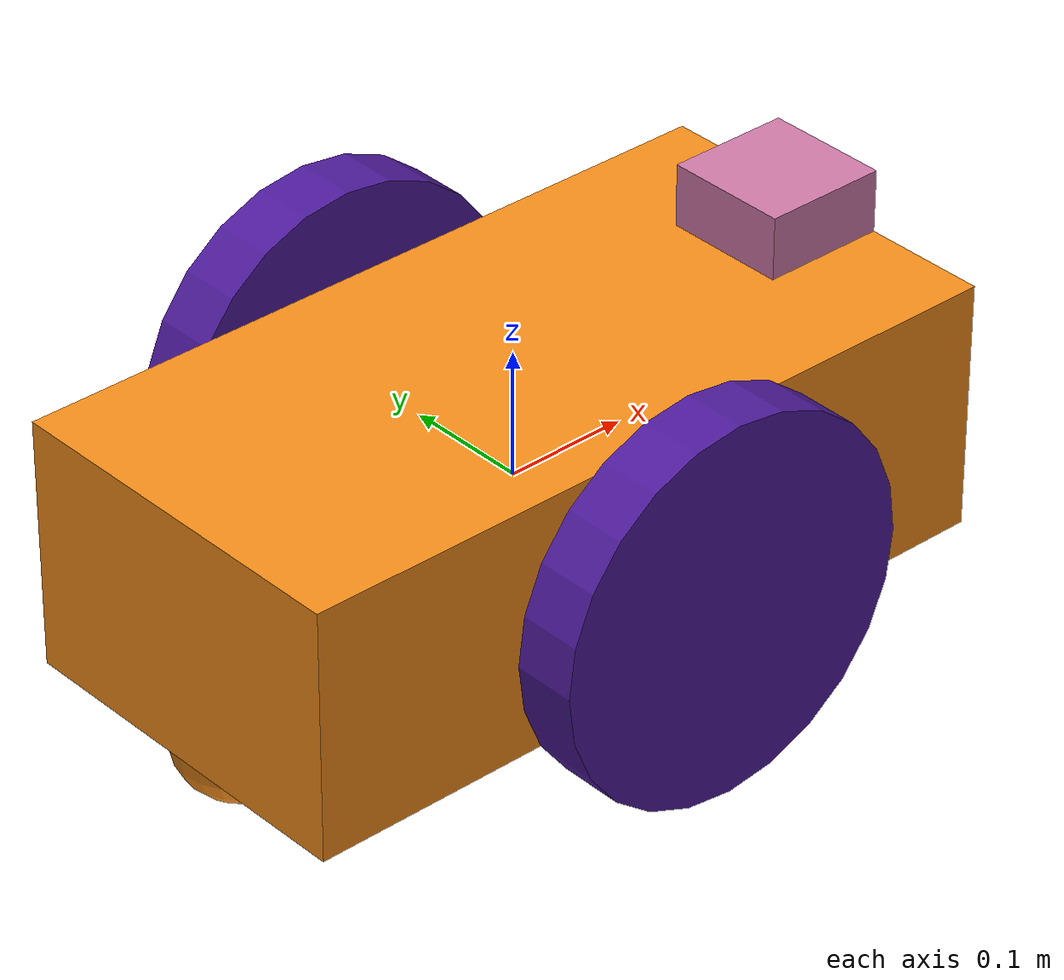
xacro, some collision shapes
<robot name="my_robot" xmlns:xacro="http://www.ros.org/wiki/xacro">

  <xacro:include filename="$(find my_robot)/urdf/my_robot.gazebo" />

  <link name="robot_footprint"></link>

  <joint name="robot_footprint_joint" type="fixed">
    <origin xyz="0 0 0" rpy="0 0 0" />
    <parent link="robot_footprint"/>
    <child link="chassis" />
  </joint>

  <link name='chassis'>
    <pose>0 0 0.1 0 0 0</pose>

    <inertial>
      <mass value="15.0"/>
      <origin xyz="0.0 0 0" rpy=" 0 0 0"/>
      <inertia
          ixx="0.1" ixy="0" ixz="0"
          iyy="0.1" iyz="0"
          izz="0.1"
      />
    </inertial>

    <collision name='collision'>
      <origin xyz="0 0 0" rpy=" 0 0 0"/>
      <geometry>
        <box size=".6 .3 .2"/>
      </geometry>
    </collision>

    <visual name='chassis_visual'>
      <origin xyz="0 0 0" rpy=" 0 0 0"/>
      <geometry>
        <box size=".6 .3 .2"/>
      </geometry>
    </visual>

    <collision name='back_caster_collision'>
      <origin xyz="-0.25 0 -0.1" rpy=" 0 0 0"/>
      <geometry>
        <sphere radius="0.0499"/>
      </geometry>
    </collision>

    <visual name='back_caster_visual'>
      <origin xyz="-0.25 0 -0.1" rpy=" 0 0 0"/>
      <geometry>
        <sphere radius="0.05"/>
      </geometry>
    </visual>

    <collision name='front_caster_collision'>
      <origin xyz="0.25 0 -0.1" rpy=" 0 0 0"/>
      <geometry>
        <sphere radius="0.0499"/>
      </geometry>
    </collision>

    <visual name='front_caster_visual'>
      <origin xyz="0.25 0 -0.1" rpy=" 0 0 0"/>
      <geometry>
        <sphere radius="0.05"/>
      </geometry>
    </visual>

  </link>

  <link name="left_wheel">

    <inertial>
      <origin xyz="0 0 0" rpy="0 1.5707 1.5707"/>
      <mass value="5"/>
      <inertia ixx="0.1" ixy="0" ixz="0" iyy="0.1" iyz="0" izz="0.1"/>
    </inertial>

    <visual>
      <origin xyz="0 0 0" rpy="0 1.5707 1.5707"/>
      <geometry>
        <cylinder radius="0.15" length="0.05"/>
      </geometry>
    </visual>

    <collision>
      <origin xyz="0 0 0" rpy="0 1.5707 1.5707"/>
      <geometry>
        <cylinder radius="0.15" length="0.05"/>
      </geometry>
    </collision>

  </link>

  <link name="right_wheel">

    <inertial>
      <origin xyz="0 0 0" rpy="0 1.5707 1.5707"/>
      <mass value="5"/>
      <inertia ixx="0.1" ixy="0" ixz="0" iyy="0.1" iyz="0" izz="0.1"/>
    </inertial>

    <visual>
      <origin xyz="0 0 0" rpy="0 1.5707 1.5707"/>
      <geometry>
        <cylinder radius="0.15" length="0.05"/>
      </geometry>
    </visual>

    <collision>
      <origin xyz="0 0 0" rpy="0 1.5707 1.5707"/>
      <geometry>
        <cylinder radius="0.15" length="0.05"/>
      </geometry>
    </collision>

  </link>

  <link name="camera">

    <inertial>
      <origin xyz="0 0 0" rpy="0 0 0"/>
      <mass value="0.1"/>
      <inertia ixx="1e-6" ixy="0" ixz="0" iyy="1e-6" iyz="0" izz="1e-6"/>
    </inertial>

    <visual>
      <origin xyz="0 0 0" rpy="0 0 0"/>
      <geometry>
        <box size="0.05 0.05 0.05"/>
      </geometry>
    </visual>

    <collision>
       <origin xyz="0 0 0" rpy="0 0 0"/>
      <geometry>
        <box size="0.05 0.05 0.05"/>
      </geometry>
    </collision>

  </link>

  <link name="camera_optical">
  </link>

  <link name="hokuyo">

    <inertial>
      <origin xyz="0 0 0" rpy="0 0 0"/>
      <mass value="1e-5"/>
      <inertia ixx="1e-6" ixy="0" ixz="0" iyy="1e-6" iyz="0" izz="1e-6"/>
    </inertial>

    <visual>
      <origin xyz="0 0 0" rpy="0 0 0"/>
      <geometry>
        <mesh filename="package://my_robot/meshes/hokuyo.dae"/>
      </geometry>
    </visual>

    <collision>
       <origin xyz="0 0 0" rpy="0 0 0"/>
      <geometry>
        <box size="0.1 0.1 0.1"/>
      </geometry>
    </collision>

  </link>

  <joint type="continuous" name="left_wheel_hinge">

    <origin xyz="0 0.2 0" rpy="0 0 0"/>
    <child link="left_wheel"/>
    <parent link="chassis"/>
    <axis xyz="0 1 0" rpy="0 0 0"/>
    <limit effort="10000" velocity="1000"/>
    <dynamics damping="1.0" friction="1.0"/>

  </joint>

  <joint type="continuous" name="right_wheel_hinge">

    <origin xyz="0 -0.2 0" rpy="0 0 0"/>
    <child link="right_wheel"/>
    <parent link="chassis"/>
    <axis xyz="0 1 0" rpy="0 0 0"/>
    <limit effort="10000" velocity="1000"/>
    <dynamics damping="1.0" friction="1.0"/>

  </joint>

  <joint type="fixed" name="camera_joint">

    <origin xyz="0.3 0 0" rpy="0 0 0"/>
    <child link="camera"/>
    <parent link="chassis"/>
    <axis xyz="0 1 0" rpy="0 0 0"/>

  </joint>

  <joint name="camera_optical_joint" type="fixed">
    <origin xyz="0 0 0" rpy="-1.5707 0 -1.5707"/>
    <parent link="camera"/>
    <child link="camera_optical"/>
  </joint>

  <joint type="fixed" name="hokuyo_joint">

    <origin xyz="0.25 0 0.1" rpy="0 0 0"/>
    <child link="hokuyo"/>
    <parent link="chassis"/>
    <axis xyz="0 1 0" rpy="0 0 0"/>

  </joint>

  <gazebo reference="left_wheel">
    <material>Gazebo/Indigo</material>
  </gazebo>

  <gazebo reference="right_wheel">
    <material>Gazebo/Indigo</material>
  </gazebo>

  <gazebo reference="camera">
    <material>Gazebo/TurquoiseGlow</material>
  </gazebo>

  <gazebo reference="chassis">
    <material>Gazebo/Orange</material>
  </gazebo>

</robot>
